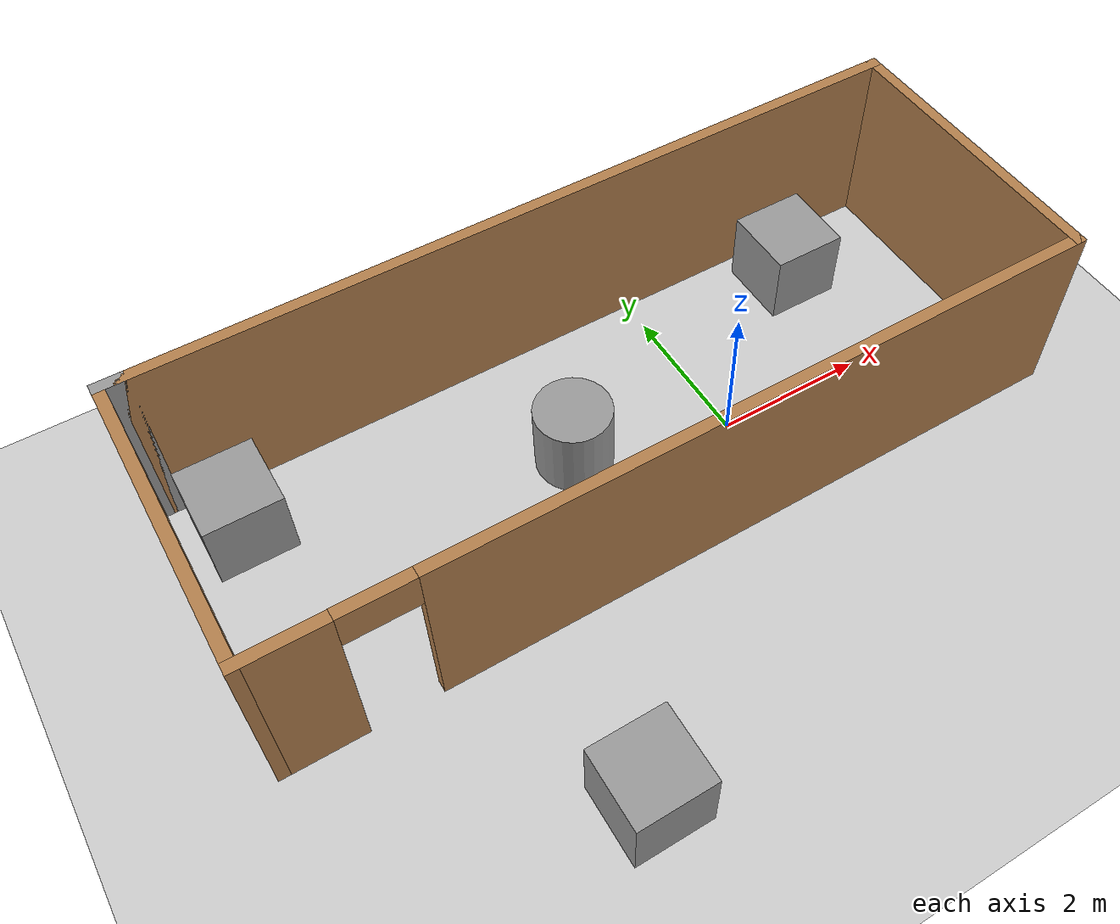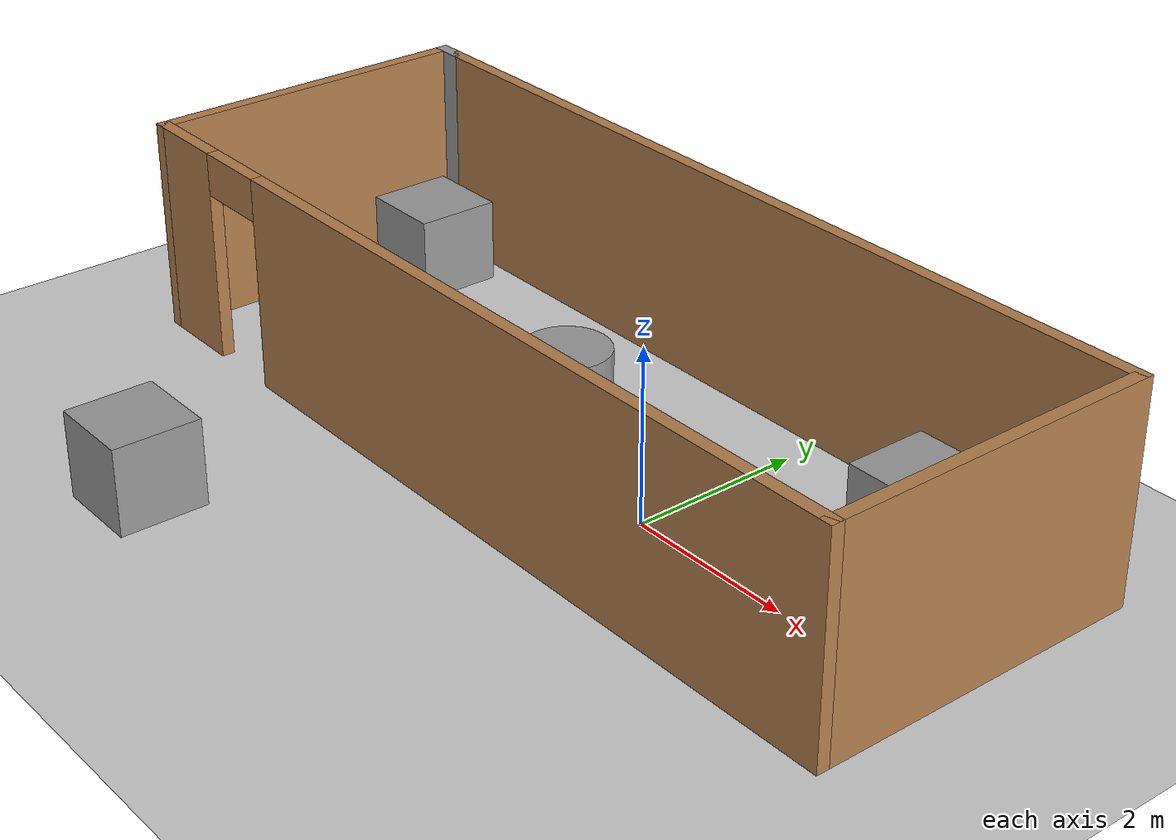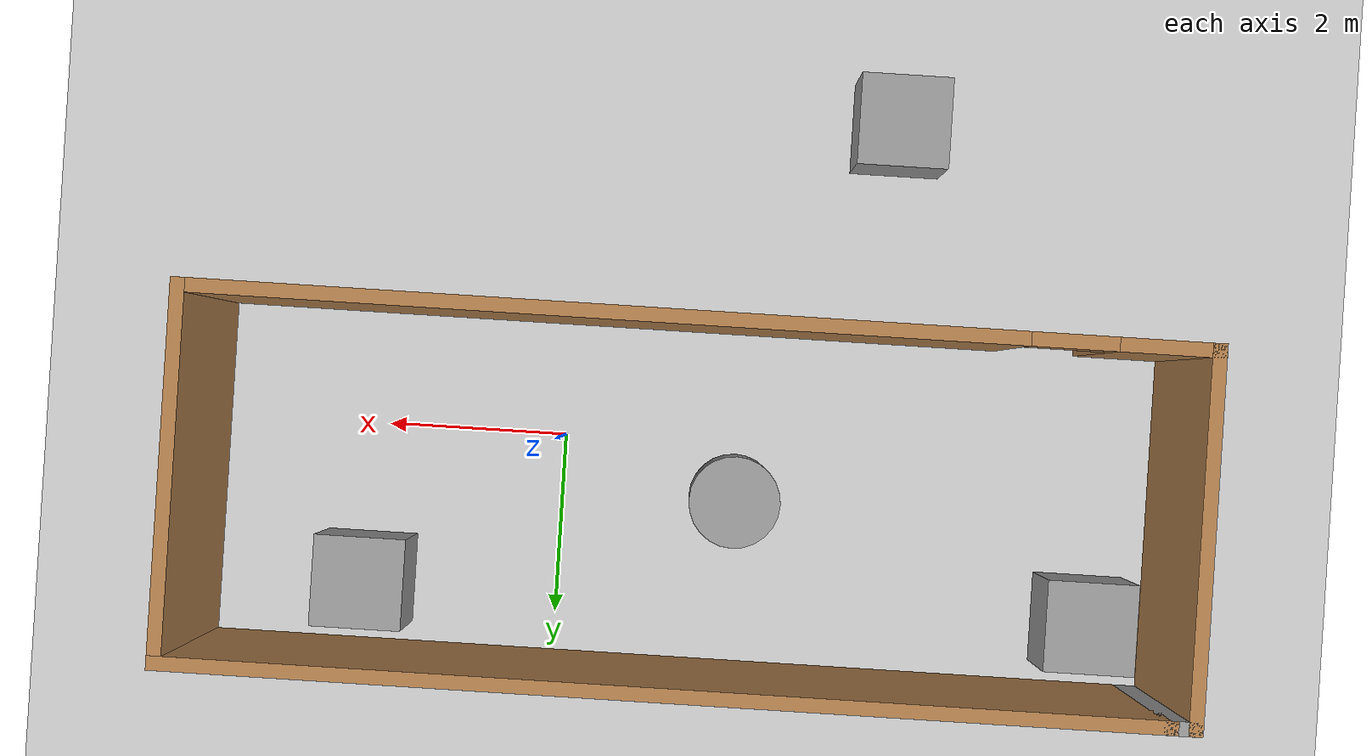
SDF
<sdf version="1.6">
 <world name="default">
  <light name="sun" type="directional">
   <pose>0 0 10 0 -0 0</pose>
   <diffuse>0.8 0.8 0.8 1</diffuse>
   <specular>0.1 0.1 0.1 1</specular>
   <attenuation>
    <range>1000</range>
    <constant>0.9</constant>
    <linear>0.01</linear>
    <quadratic>0.001</quadratic>
   </attenuation>
   <direction>-0.5 0.5 -1</direction>
  </light>
  <model name="ground_plane">
   <static>1</static>
   <link name="link">
    <collision name="collision">
     <geometry><plane><normal>0 0 1</normal><size>100 100</size></plane></geometry>
     <surface><friction><ode><mu>100</mu><mu2>50</mu2></ode></friction></surface>
    </collision>
    <visual name="visual">
     <cast_shadows>0</cast_shadows>
     <geometry><plane><normal>0 0 1</normal><size>100 100</size></plane></geometry>
     <material>
      <script><uri>file://media/materials/scripts/gazebo.material</uri><name>Gazebo/Grey</name></script>
     </material>
    </visual>
   </link>
  </model>
  <gravity>0 0 -9.8</gravity>
  <magnetic_field>6e-06 2.3e-05 -4.2e-05</magnetic_field>
  <atmosphere type="adiabatic"/>
  <physics name="default_physics" default="0" type="ode">
   <max_step_size>0.001</max_step_size>
   <real_time_factor>1</real_time_factor>
   <real_time_update_rate>1000</real_time_update_rate>
  </physics>
  <scene><ambient>0.4 0.4 0.4 1</ambient><background>0.7 0.7 0.7 1</background><shadows>1</shadows></scene>
  <spherical_coordinates>
   <surface_model>EARTH_WGS84</surface_model>
   <latitude_deg>0</latitude_deg>
   <longitude_deg>0</longitude_deg>
   <elevation>0</elevation>
   <heading_deg>0</heading_deg>
  </spherical_coordinates>
  <model name="test_world">
   <pose>-1.41023 0.588471 0 0 -0 0</pose>
   <link name="Wall_4">
    <collision name="Wall_4_Collision">
     <geometry><box><size>10.5 0.15 2.5</size></box></geometry>
     <pose>0 0 1.25 0 -0 0</pose>
    </collision>
    <visual name="Wall_4_Visual">
     <pose>0 0 1.25 0 -0 0</pose>
     <geometry><box><size>10.5 0.15 2.5</size></box></geometry>
     <material>
      <script><uri>file://media/materials/scripts/gazebo.material</uri><name>Gazebo/Wood</name></script>
      <ambient>1 1 1 1</ambient>
     </material>
    </visual>
    <pose>0.125 1.925 0 0 -0 0</pose>
   </link>
   <link name="Wall_5">
    <collision name="Wall_5_Collision">
     <geometry><box><size>4 0.15 2.5</size></box></geometry>
     <pose>0 0 1.25 0 -0 0</pose>
    </collision>
    <visual name="Wall_5_Visual">
     <pose>0 0 1.25 0 -0 0</pose>
     <geometry><box><size>4 0.15 2.5</size></box></geometry>
     <material>
      <script><uri>file://media/materials/scripts/gazebo.material</uri><name>Gazebo/Wood</name></script>
      <ambient>1 1 1 1</ambient>
     </material>
    </visual>
    <pose>5.3 0 0 0 0 -1.5708</pose>
   </link>
   <link name="Wall_6">
    <pose>0 -1.925 0 0 -0 3.14159</pose>
    <visual name="Wall_6_Visual_0">
     <pose>-0.99585 0 1.25 0 -0 0</pose>
     <geometry><box><size>8.7583 0.15 2.5</size></box></geometry>
     <material>
      <script><uri>file://media/materials/scripts/gazebo.material</uri><name>Gazebo/Wood</name></script>
      <ambient>1 1 1 1</ambient>
     </material>
    </visual>
    <collision name="Wall_6_Collision_0">
     <geometry><box><size>8.7583 0.15 2.5</size></box></geometry>
     <pose>-0.99585 0 1.25 0 -0 0</pose>
    </collision>
    <visual name="Wall_6_Visual_1">
     <pose>4.82915 0 1.25 0 -0 0</pose>
     <geometry><box><size>1.0917 0.15 2.5</size></box></geometry>
     <material>
      <script><uri>file://media/materials/scripts/gazebo.material</uri><name>Gazebo/Wood</name></script>
      <ambient>1 1 1 1</ambient>
     </material>
    </visual>
    <collision name="Wall_6_Collision_1">
     <geometry><box><size>1.0917 0.15 2.5</size></box></geometry>
     <pose>4.82915 0 1.25 0 -0 0</pose>
    </collision>
    <visual name="Wall_6_Visual_2">
     <pose>3.8333 0 2.25 0 -0 0</pose>
     <geometry><box><size>0.9 0.15 0.5</size></box></geometry>
     <material>
      <script><uri>file://media/materials/scripts/gazebo.material</uri><name>Gazebo/Wood</name></script>
      <ambient>1 1 1 1</ambient>
     </material>
    </visual>
    <collision name="Wall_6_Collision_2">
     <geometry><box><size>0.9 0.15 0.5</size></box></geometry>
     <pose>3.8333 0 2.25 0 -0 0</pose>
    </collision>
   </link>
   <link name="Wall_7">
    <collision name="Wall_7_Collision">
     <geometry><box><size>4 0.15 2.5</size></box></geometry>
     <pose>0 0 1.25 0 -0 0</pose>
    </collision>
    <visual name="Wall_7_Visual">
     <pose>0 0 1.25 0 -0 0</pose>
     <geometry><box><size>4 0.15 2.5</size></box></geometry>
     <material>
      <script><uri>file://media/materials/scripts/gazebo.material</uri><name>Gazebo/Wood</name></script>
      <ambient>1 1 1 1</ambient>
     </material>
    </visual>
    <pose>-5.3 0 0 0 -0 1.5708</pose>
   </link>
   <link name="Wall_8">
    <collision name="Wall_8_Collision">
     <geometry><box><size>0.4 0.15 2.5</size></box></geometry>
     <pose>0 0 1.25 0 -0 0</pose>
    </collision>
    <visual name="Wall_8_Visual">
     <pose>0 0 1.25 0 -0 0</pose>
     <geometry><box><size>0.4 0.15 2.5</size></box></geometry>
     <material>
      <script><uri>file://media/materials/scripts/gazebo.material</uri><name>Gazebo/Grey</name></script>
      <ambient>1 1 1 1</ambient>
     </material>
    </visual>
    <pose>-5.175 1.925 0 0 -0 0</pose>
   </link>
   <static>1</static>
  </model>
  <model name="unit_box_0">
   <pose>-3.52863 -3.67617 0.499995 -1e-05 0 0</pose>
   <link name="link">
    <inertial>
     <mass>1</mass>
     <inertia>
      <ixx>0.166667</ixx>
      <ixy>0</ixy>
      <ixz>0</ixz>
      <iyy>0.166667</iyy>
      <iyz>0</iyz>
      <izz>0.166667</izz>
     </inertia>
    </inertial>
    <collision name="collision"><geometry><box><size>1 1 1</size></box></geometry></collision>
    <visual name="visual">
     <geometry><box><size>1 1 1</size></box></geometry>
     <material>
      <script><name>Gazebo/Grey</name><uri>file://media/materials/scripts/gazebo.material</uri></script>
     </material>
    </visual>
   </link>
  </model>
  <model name="unit_box_1">
   <pose>-5.89855 1.71492 0.499995 0 1e-05 0</pose>
   <link name="link">
    <inertial>
     <mass>1</mass>
     <inertia>
      <ixx>0.166667</ixx>
      <ixy>0</ixy>
      <ixz>0</ixz>
      <iyy>0.166667</iyy>
      <iyz>0</iyz>
      <izz>0.166667</izz>
     </inertia>
    </inertial>
    <collision name="collision"><geometry><box><size>1 1 1</size></box></geometry></collision>
    <visual name="visual">
     <geometry><box><size>1 1 1</size></box></geometry>
     <material>
      <script><name>Gazebo/Grey</name><uri>file://media/materials/scripts/gazebo.material</uri></script>
     </material>
    </visual>
   </link>
  </model>
  <model name="unit_box_2">
   <pose>2.11629 1.72593 0.499995 -1e-05 0 0</pose>
   <link name="link">
    <inertial>
     <mass>1</mass>
     <inertia>
      <ixx>0.166667</ixx>
      <ixy>0</ixy>
      <ixz>0</ixz>
      <iyy>0.166667</iyy>
      <iyz>0</iyz>
      <izz>0.166667</izz>
     </inertia>
    </inertial>
    <collision name="collision"><geometry><box><size>1 1 1</size></box></geometry></collision>
    <visual name="visual">
     <geometry><box><size>1 1 1</size></box></geometry>
     <material>
      <script><name>Gazebo/Grey</name><uri>file://media/materials/scripts/gazebo.material</uri></script>
     </material>
    </visual>
   </link>
  </model>
  <model name="unit_cylinder_0">
   <pose>-1.93238 0.593309 0.499997 3e-06 4e-06 -0</pose>
   <link name="link">
    <inertial>
     <mass>1</mass>
     <inertia><ixx>0.145833</ixx><ixy>0</ixy><ixz>0</ixz><iyy>0.145833</iyy><iyz>0</iyz><izz>0.125</izz></inertia>
    </inertial>
    <collision name="collision">
     <geometry><cylinder><radius>0.5</radius><length>1</length></cylinder></geometry>
    </collision>
    <visual name="visual">
     <geometry><cylinder><radius>0.5</radius><length>1</length></cylinder></geometry>
     <material>
      <script><name>Gazebo/Grey</name><uri>file://media/materials/scripts/gazebo.material</uri></script>
     </material>
    </visual>
   </link>
  </model>
 </world>
</sdf>
